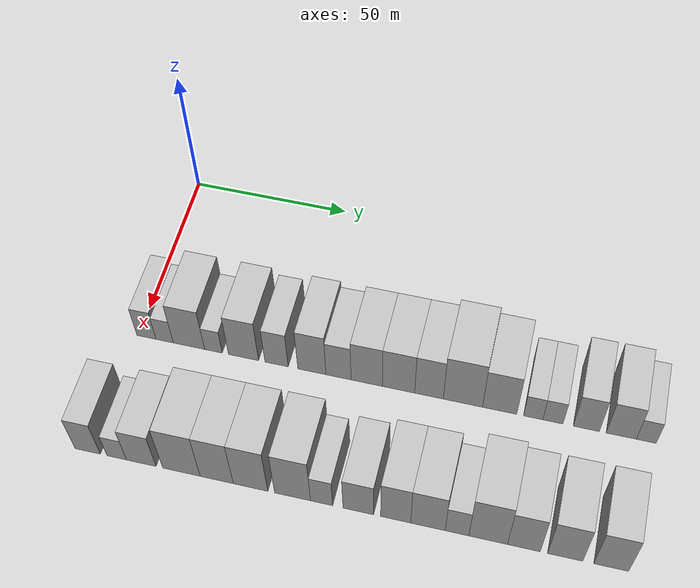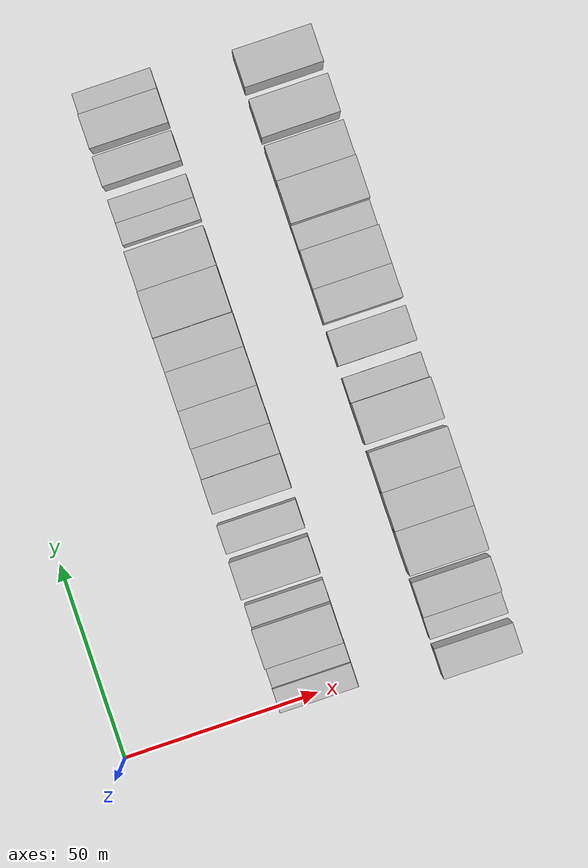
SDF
<sdf version="1.6">
 <world name="default">
  <model name="building_36">
   <static>1</static>
   <pose>50.0000 2.5396 0 0.000000 0.000000 0.000000</pose>
   <link name="link">
    <pose>0 0 7.50 0 0 0</pose>
    <collision name="collision"><geometry><box><size>20.0000 6.1050 15.0000</size></box></geometry></collision>
    <visual name="visual">
     <cast_shadows>0</cast_shadows>
     <geometry><box><size>20.0000 6.1050 15.0000</size></box></geometry>
     <material>
      <script>
       <uri>model://HANNAS_wall/materials/scripts</uri>
       <uri>model://HANNAS_wall/materials/textures</uri>
       <name>vrc/HANNAS_wall</name>
      </script>
     </material>
    </visual>
   </link>
  </model>
  <model name="building_37">
   <static>1</static>
   <pose>50.0000 8.3543 0 0.000000 0.000000 0.000000</pose>
   <link name="link">
    <pose>0 0 6.00 0 0 0</pose>
    <collision name="collision"><geometry><box><size>20.0000 5.5245 12.0000</size></box></geometry></collision>
    <visual name="visual">
     <cast_shadows>0</cast_shadows>
     <geometry><box><size>20.0000 5.5245 12.0000</size></box></geometry>
     <material>
      <script>
       <uri>model://HANNAS_wall/materials/scripts</uri>
       <uri>model://HANNAS_wall/materials/textures</uri>
       <name>vrc/HANNAS_wall</name>
      </script>
     </material>
    </visual>
   </link>
  </model>
  <model name="building_38">
   <static>1</static>
   <pose>50.0000 16.1037 0 0.000000 0.000000 0.000000</pose>
   <link name="link">
    <pose>0 0 10.50 0 0 0</pose>
    <collision name="collision"><geometry><box><size>20.0000 9.9742 21.0000</size></box></geometry></collision>
    <visual name="visual">
     <cast_shadows>0</cast_shadows>
     <geometry><box><size>20.0000 9.9742 21.0000</size></box></geometry>
     <material>
      <script>
       <uri>model://HANNAS_wall/materials/scripts</uri>
       <uri>model://HANNAS_wall/materials/textures</uri>
       <name>vrc/HANNAS_wall</name>
      </script>
     </material>
    </visual>
   </link>
  </model>
  <model name="building_39">
   <static>1</static>
   <pose>50.0000 23.8589 0 0.000000 0.000000 0.000000</pose>
   <link name="link">
    <pose>0 0 6.00 0 0 0</pose>
    <collision name="collision"><geometry><box><size>20.0000 5.5364 12.0000</size></box></geometry></collision>
    <visual name="visual">
     <cast_shadows>0</cast_shadows>
     <geometry><box><size>20.0000 5.5364 12.0000</size></box></geometry>
     <material>
      <script>
       <uri>model://HANNAS_wall/materials/scripts</uri>
       <uri>model://HANNAS_wall/materials/textures</uri>
       <name>vrc/HANNAS_wall</name>
      </script>
     </material>
    </visual>
   </link>
  </model>
  <model name="building_40">
   <static>1</static>
   <pose>50.0000 33.3413 0 0.000000 0.000000 0.000000</pose>
   <link name="link">
    <pose>0 0 10.50 0 0 0</pose>
    <collision name="collision"><geometry><box><size>20.0000 9.4282 21.0000</size></box></geometry></collision>
    <visual name="visual">
     <cast_shadows>0</cast_shadows>
     <geometry><box><size>20.0000 9.4282 21.0000</size></box></geometry>
     <material>
      <script>
       <uri>model://HANNAS_wall/materials/scripts</uri>
       <uri>model://HANNAS_wall/materials/textures</uri>
       <name>vrc/HANNAS_wall</name>
      </script>
     </material>
    </visual>
   </link>
  </model>
  <model name="building_41">
   <static>1</static>
   <pose>50.0000 43.6738 0 0.000000 0.000000 0.000000</pose>
   <link name="link">
    <pose>0 0 9.00 0 0 0</pose>
    <collision name="collision"><geometry><box><size>20.0000 7.2368 18.0000</size></box></geometry></collision>
    <visual name="visual">
     <cast_shadows>0</cast_shadows>
     <geometry><box><size>20.0000 7.2368 18.0000</size></box></geometry>
     <material>
      <script>
       <uri>model://HANNAS_wall/materials/scripts</uri>
       <uri>model://HANNAS_wall/materials/textures</uri>
       <name>vrc/HANNAS_wall</name>
      </script>
     </material>
    </visual>
   </link>
  </model>
  <model name="building_42">
   <static>1</static>
   <pose>50.0000 54.6382 0 0.000000 0.000000 0.000000</pose>
   <link name="link">
    <pose>0 0 10.50 0 0 0</pose>
    <collision name="collision"><geometry><box><size>20.0000 8.6921 21.0000</size></box></geometry></collision>
    <visual name="visual">
     <cast_shadows>0</cast_shadows>
     <geometry><box><size>20.0000 8.6921 21.0000</size></box></geometry>
     <material>
      <script>
       <uri>model://HANNAS_wall/materials/scripts</uri>
       <uri>model://HANNAS_wall/materials/textures</uri>
       <name>vrc/HANNAS_wall</name>
      </script>
     </material>
    </visual>
   </link>
  </model>
  <model name="building_43">
   <static>1</static>
   <pose>50.0000 62.8460 0 0.000000 0.000000 0.000000</pose>
   <link name="link">
    <pose>0 0 9.00 0 0 0</pose>
    <collision name="collision"><geometry><box><size>20.0000 7.7234 18.0000</size></box></geometry></collision>
    <visual name="visual">
     <cast_shadows>0</cast_shadows>
     <geometry><box><size>20.0000 7.7234 18.0000</size></box></geometry>
     <material>
      <script>
       <uri>model://HANNAS_wall/materials/scripts</uri>
       <uri>model://HANNAS_wall/materials/textures</uri>
       <name>vrc/HANNAS_wall</name>
      </script>
     </material>
    </visual>
   </link>
  </model>
  <model name="building_44">
   <static>1</static>
   <pose>50.0000 71.4762 0 0.000000 0.000000 0.000000</pose>
   <link name="link">
    <pose>0 0 10.50 0 0 0</pose>
    <collision name="collision"><geometry><box><size>20.0000 9.5371 21.0000</size></box></geometry></collision>
    <visual name="visual">
     <cast_shadows>0</cast_shadows>
     <geometry><box><size>20.0000 9.5371 21.0000</size></box></geometry>
     <material>
      <script>
       <uri>model://HANNAS_wall/materials/scripts</uri>
       <uri>model://HANNAS_wall/materials/textures</uri>
       <name>vrc/HANNAS_wall</name>
      </script>
     </material>
    </visual>
   </link>
  </model>
  <model name="building_45">
   <static>1</static>
   <pose>50.0000 81.1672 0 0.000000 0.000000 0.000000</pose>
   <link name="link">
    <pose>0 0 10.50 0 0 0</pose>
    <collision name="collision"><geometry><box><size>20.0000 9.8448 21.0000</size></box></geometry></collision>
    <visual name="visual">
     <cast_shadows>0</cast_shadows>
     <geometry><box><size>20.0000 9.8448 21.0000</size></box></geometry>
     <material>
      <script>
       <uri>model://HANNAS_wall/materials/scripts</uri>
       <uri>model://HANNAS_wall/materials/textures</uri>
       <name>vrc/HANNAS_wall</name>
      </script>
     </material>
    </visual>
   </link>
  </model>
  <model name="building_46">
   <static>1</static>
   <pose>50.0000 90.3996 0 0.000000 0.000000 0.000000</pose>
   <link name="link">
    <pose>0 0 10.50 0 0 0</pose>
    <collision name="collision"><geometry><box><size>20.0000 8.6202 21.0000</size></box></geometry></collision>
    <visual name="visual">
     <cast_shadows>0</cast_shadows>
     <geometry><box><size>20.0000 8.6202 21.0000</size></box></geometry>
     <material>
      <script>
       <uri>model://HANNAS_wall/materials/scripts</uri>
       <uri>model://HANNAS_wall/materials/textures</uri>
       <name>vrc/HANNAS_wall</name>
      </script>
     </material>
    </visual>
   </link>
  </model>
  <model name="building_47">
   <static>1</static>
   <pose>50.0000 100.5778 0 0.000000 0.000000 0.000000</pose>
   <link name="link">
    <pose>0 0 12.00 0 0 0</pose>
    <collision name="collision"><geometry><box><size>20.0000 11.7363 24.0000</size></box></geometry></collision>
    <visual name="visual">
     <cast_shadows>0</cast_shadows>
     <geometry><box><size>20.0000 11.7363 24.0000</size></box></geometry>
     <material>
      <script>
       <uri>model://HANNAS_wall/materials/scripts</uri>
       <uri>model://HANNAS_wall/materials/textures</uri>
       <name>vrc/HANNAS_wall</name>
      </script>
     </material>
    </visual>
   </link>
  </model>
  <model name="building_48">
   <static>1</static>
   <pose>50.0000 111.5434 0 0.000000 0.000000 0.000000</pose>
   <link name="link">
    <pose>0 0 10.50 0 0 0</pose>
    <collision name="collision"><geometry><box><size>20.0000 10.1949 21.0000</size></box></geometry></collision>
    <visual name="visual">
     <cast_shadows>0</cast_shadows>
     <geometry><box><size>20.0000 10.1949 21.0000</size></box></geometry>
     <material>
      <script>
       <uri>model://HANNAS_wall/materials/scripts</uri>
       <uri>model://HANNAS_wall/materials/textures</uri>
       <name>vrc/HANNAS_wall</name>
      </script>
     </material>
    </visual>
   </link>
  </model>
  <model name="building_49">
   <static>1</static>
   <pose>50.0000 121.4799 0 0.000000 0.000000 0.000000</pose>
   <link name="link">
    <pose>0 0 6.00 0 0 0</pose>
    <collision name="collision"><geometry><box><size>20.0000 5.6781 12.0000</size></box></geometry></collision>
    <visual name="visual">
     <cast_shadows>0</cast_shadows>
     <geometry><box><size>20.0000 5.6781 12.0000</size></box></geometry>
     <material>
      <script>
       <uri>model://HANNAS_wall/materials/scripts</uri>
       <uri>model://HANNAS_wall/materials/textures</uri>
       <name>vrc/HANNAS_wall</name>
      </script>
     </material>
    </visual>
   </link>
  </model>
  <model name="building_50">
   <static>1</static>
   <pose>50.0000 127.2958 0 0.000000 0.000000 0.000000</pose>
   <link name="link">
    <pose>0 0 6.00 0 0 0</pose>
    <collision name="collision"><geometry><box><size>20.0000 5.9538 12.0000</size></box></geometry></collision>
    <visual name="visual">
     <cast_shadows>0</cast_shadows>
     <geometry><box><size>20.0000 5.9538 12.0000</size></box></geometry>
     <material>
      <script>
       <uri>model://HANNAS_wall/materials/scripts</uri>
       <uri>model://HANNAS_wall/materials/textures</uri>
       <name>vrc/HANNAS_wall</name>
      </script>
     </material>
    </visual>
   </link>
  </model>
  <model name="building_51">
   <static>1</static>
   <pose>50.0000 137.0834 0 0.000000 0.000000 0.000000</pose>
   <link name="link">
    <pose>0 0 9.00 0 0 0</pose>
    <collision name="collision"><geometry><box><size>20.0000 7.6214 18.0000</size></box></geometry></collision>
    <visual name="visual">
     <cast_shadows>0</cast_shadows>
     <geometry><box><size>20.0000 7.6214 18.0000</size></box></geometry>
     <material>
      <script>
       <uri>model://HANNAS_wall/materials/scripts</uri>
       <uri>model://HANNAS_wall/materials/textures</uri>
       <name>vrc/HANNAS_wall</name>
      </script>
     </material>
    </visual>
   </link>
  </model>
  <model name="building_52">
   <static>1</static>
   <pose>50.0000 147.2627 0 0.000000 0.000000 0.000000</pose>
   <link name="link">
    <pose>0 0 9.00 0 0 0</pose>
    <collision name="collision"><geometry><box><size>20.0000 8.7371 18.0000</size></box></geometry></collision>
    <visual name="visual">
     <cast_shadows>0</cast_shadows>
     <geometry><box><size>20.0000 8.7371 18.0000</size></box></geometry>
     <material>
      <script>
       <uri>model://HANNAS_wall/materials/scripts</uri>
       <uri>model://HANNAS_wall/materials/textures</uri>
       <name>vrc/HANNAS_wall</name>
      </script>
     </material>
    </visual>
   </link>
  </model>
  <model name="building_53">
   <static>1</static>
   <pose>50.0000 154.4968 0 0.000000 0.000000 0.000000</pose>
   <link name="link">
    <pose>0 0 6.00 0 0 0</pose>
    <collision name="collision"><geometry><box><size>20.0000 5.7311 12.0000</size></box></geometry></collision>
    <visual name="visual">
     <cast_shadows>0</cast_shadows>
     <geometry><box><size>20.0000 5.7311 12.0000</size></box></geometry>
     <material>
      <script>
       <uri>model://HANNAS_wall/materials/scripts</uri>
       <uri>model://HANNAS_wall/materials/textures</uri>
       <name>vrc/HANNAS_wall</name>
      </script>
     </material>
    </visual>
   </link>
  </model>
  <model name="building_104">
   <static>1</static>
   <pose>90.0000 -1.3233 0 0.000000 0.000000 0.000000</pose>
   <link name="link">
    <pose>0 0 9.00 0 0 0</pose>
    <collision name="collision"><geometry><box><size>20.0000 7.6734 18.0000</size></box></geometry></collision>
    <visual name="visual">
     <cast_shadows>0</cast_shadows>
     <geometry><box><size>20.0000 7.6734 18.0000</size></box></geometry>
     <material>
      <script>
       <uri>model://HANNAS_wall/materials/scripts</uri>
       <uri>model://HANNAS_wall/materials/textures</uri>
       <name>vrc/HANNAS_wall</name>
      </script>
     </material>
    </visual>
   </link>
  </model>
  <model name="building_105">
   <static>1</static>
   <pose>90.0000 7.4750 0 0.000000 0.000000 0.000000</pose>
   <link name="link">
    <pose>0 0 6.00 0 0 0</pose>
    <collision name="collision"><geometry><box><size>20.0000 5.9233 12.0000</size></box></geometry></collision>
    <visual name="visual">
     <cast_shadows>0</cast_shadows>
     <geometry><box><size>20.0000 5.9233 12.0000</size></box></geometry>
     <material>
      <script>
       <uri>model://HANNAS_wall/materials/scripts</uri>
       <uri>model://HANNAS_wall/materials/textures</uri>
       <name>vrc/HANNAS_wall</name>
      </script>
     </material>
    </visual>
   </link>
  </model>
  <model name="building_106">
   <static>1</static>
   <pose>90.0000 14.8779 0 0.000000 0.000000 0.000000</pose>
   <link name="link">
    <pose>0 0 9.00 0 0 0</pose>
    <collision name="collision"><geometry><box><size>20.0000 8.8825 18.0000</size></box></geometry></collision>
    <visual name="visual">
     <cast_shadows>0</cast_shadows>
     <geometry><box><size>20.0000 8.8825 18.0000</size></box></geometry>
     <material>
      <script>
       <uri>model://HANNAS_wall/materials/scripts</uri>
       <uri>model://HANNAS_wall/materials/textures</uri>
       <name>vrc/HANNAS_wall</name>
      </script>
     </material>
    </visual>
   </link>
  </model>
  <model name="building_107">
   <static>1</static>
   <pose>90.0000 26.9058 0 0.000000 0.000000 0.000000</pose>
   <link name="link">
    <pose>0 0 12.00 0 0 0</pose>
    <collision name="collision"><geometry><box><size>20.0000 11.1733 24.0000</size></box></geometry></collision>
    <visual name="visual">
     <cast_shadows>0</cast_shadows>
     <geometry><box><size>20.0000 11.1733 24.0000</size></box></geometry>
     <material>
      <script>
       <uri>model://HANNAS_wall/materials/scripts</uri>
       <uri>model://HANNAS_wall/materials/textures</uri>
       <name>vrc/HANNAS_wall</name>
      </script>
     </material>
    </visual>
   </link>
  </model>
  <model name="building_108">
   <static>1</static>
   <pose>90.0000 37.3984 0 0.000000 0.000000 0.000000</pose>
   <link name="link">
    <pose>0 0 12.00 0 0 0</pose>
    <collision name="collision"><geometry><box><size>20.0000 9.8119 24.0000</size></box></geometry></collision>
    <visual name="visual">
     <cast_shadows>0</cast_shadows>
     <geometry><box><size>20.0000 9.8119 24.0000</size></box></geometry>
     <material>
      <script>
       <uri>model://HANNAS_wall/materials/scripts</uri>
       <uri>model://HANNAS_wall/materials/textures</uri>
       <name>vrc/HANNAS_wall</name>
      </script>
     </material>
    </visual>
   </link>
  </model>
  <model name="building_109">
   <static>1</static>
   <pose>90.0000 47.3641 0 0.000000 0.000000 0.000000</pose>
   <link name="link">
    <pose>0 0 12.00 0 0 0</pose>
    <collision name="collision"><geometry><box><size>20.0000 10.1194 24.0000</size></box></geometry></collision>
    <visual name="visual">
     <cast_shadows>0</cast_shadows>
     <geometry><box><size>20.0000 10.1194 24.0000</size></box></geometry>
     <material>
      <script>
       <uri>model://HANNAS_wall/materials/scripts</uri>
       <uri>model://HANNAS_wall/materials/textures</uri>
       <name>vrc/HANNAS_wall</name>
      </script>
     </material>
    </visual>
   </link>
  </model>
  <model name="building_110">
   <static>1</static>
   <pose>90.0000 59.6481 0 0.000000 0.000000 0.000000</pose>
   <link name="link">
    <pose>0 0 12.00 0 0 0</pose>
    <collision name="collision"><geometry><box><size>20.0000 10.4486 24.0000</size></box></geometry></collision>
    <visual name="visual">
     <cast_shadows>0</cast_shadows>
     <geometry><box><size>20.0000 10.4486 24.0000</size></box></geometry>
     <material>
      <script>
       <uri>model://HANNAS_wall/materials/scripts</uri>
       <uri>model://HANNAS_wall/materials/textures</uri>
       <name>vrc/HANNAS_wall</name>
      </script>
     </material>
    </visual>
   </link>
  </model>
  <model name="building_111">
   <static>1</static>
   <pose>90.0000 68.0608 0 0.000000 0.000000 0.000000</pose>
   <link name="link">
    <pose>0 0 7.50 0 0 0</pose>
    <collision name="collision"><geometry><box><size>20.0000 6.3768 15.0000</size></box></geometry></collision>
    <visual name="visual">
     <cast_shadows>0</cast_shadows>
     <geometry><box><size>20.0000 6.3768 15.0000</size></box></geometry>
     <material>
      <script>
       <uri>model://HANNAS_wall/materials/scripts</uri>
       <uri>model://HANNAS_wall/materials/textures</uri>
       <name>vrc/HANNAS_wall</name>
      </script>
     </material>
    </visual>
   </link>
  </model>
  <model name="building_112">
   <static>1</static>
   <pose>90.0000 78.6426 0 0.000000 0.000000 0.000000</pose>
   <link name="link">
    <pose>0 0 9.00 0 0 0</pose>
    <collision name="collision"><geometry><box><size>20.0000 8.7869 18.0000</size></box></geometry></collision>
    <visual name="visual">
     <cast_shadows>0</cast_shadows>
     <geometry><box><size>20.0000 8.7869 18.0000</size></box></geometry>
     <material>
      <script>
       <uri>model://HANNAS_wall/materials/scripts</uri>
       <uri>model://HANNAS_wall/materials/textures</uri>
       <name>vrc/HANNAS_wall</name>
      </script>
     </material>
    </visual>
   </link>
  </model>
  <model name="building_113">
   <static>1</static>
   <pose>90.0000 89.3185 0 0.000000 0.000000 0.000000</pose>
   <link name="link">
    <pose>0 0 10.50 0 0 0</pose>
    <collision name="collision"><geometry><box><size>20.0000 8.5649 21.0000</size></box></geometry></collision>
    <visual name="visual">
     <cast_shadows>0</cast_shadows>
     <geometry><box><size>20.0000 8.5649 21.0000</size></box></geometry>
     <material>
      <script>
       <uri>model://HANNAS_wall/materials/scripts</uri>
       <uri>model://HANNAS_wall/materials/textures</uri>
       <name>vrc/HANNAS_wall</name>
      </script>
     </material>
    </visual>
   </link>
  </model>
  <model name="building_114">
   <static>1</static>
   <pose>90.0000 98.4926 0 0.000000 0.000000 0.000000</pose>
   <link name="link">
    <pose>0 0 10.50 0 0 0</pose>
    <collision name="collision"><geometry><box><size>20.0000 9.7833 21.0000</size></box></geometry></collision>
    <visual name="visual">
     <cast_shadows>0</cast_shadows>
     <geometry><box><size>20.0000 9.7833 21.0000</size></box></geometry>
     <material>
      <script>
       <uri>model://HANNAS_wall/materials/scripts</uri>
       <uri>model://HANNAS_wall/materials/textures</uri>
       <name>vrc/HANNAS_wall</name>
      </script>
     </material>
    </visual>
   </link>
  </model>
  <model name="building_115">
   <static>1</static>
   <pose>90.0000 106.6974 0 0.000000 0.000000 0.000000</pose>
   <link name="link">
    <pose>0 0 7.50 0 0 0</pose>
    <collision name="collision"><geometry><box><size>20.0000 6.6263 15.0000</size></box></geometry></collision>
    <visual name="visual">
     <cast_shadows>0</cast_shadows>
     <geometry><box><size>20.0000 6.6263 15.0000</size></box></geometry>
     <material>
      <script>
       <uri>model://HANNAS_wall/materials/scripts</uri>
       <uri>model://HANNAS_wall/materials/textures</uri>
       <name>vrc/HANNAS_wall</name>
      </script>
     </material>
    </visual>
   </link>
  </model>
  <model name="building_116">
   <static>1</static>
   <pose>90.0000 115.4018 0 0.000000 0.000000 0.000000</pose>
   <link name="link">
    <pose>0 0 12.00 0 0 0</pose>
    <collision name="collision"><geometry><box><size>20.0000 10.7824 24.0000</size></box></geometry></collision>
    <visual name="visual">
     <cast_shadows>0</cast_shadows>
     <geometry><box><size>20.0000 10.7824 24.0000</size></box></geometry>
     <material>
      <script>
       <uri>model://HANNAS_wall/materials/scripts</uri>
       <uri>model://HANNAS_wall/materials/textures</uri>
       <name>vrc/HANNAS_wall</name>
      </script>
     </material>
    </visual>
   </link>
  </model>
  <model name="building_117">
   <static>1</static>
   <pose>90.0000 125.3469 0 0.000000 0.000000 0.000000</pose>
   <link name="link">
    <pose>0 0 10.50 0 0 0</pose>
    <collision name="collision"><geometry><box><size>20.0000 9.1078 21.0000</size></box></geometry></collision>
    <visual name="visual">
     <cast_shadows>0</cast_shadows>
     <geometry><box><size>20.0000 9.1078 21.0000</size></box></geometry>
     <material>
      <script>
       <uri>model://HANNAS_wall/materials/scripts</uri>
       <uri>model://HANNAS_wall/materials/textures</uri>
       <name>vrc/HANNAS_wall</name>
      </script>
     </material>
    </visual>
   </link>
  </model>
  <model name="building_118">
   <static>1</static>
   <pose>90.0000 136.7543 0 0.000000 0.000000 0.000000</pose>
   <link name="link">
    <pose>0 0 10.50 0 0 0</pose>
    <collision name="collision"><geometry><box><size>20.0000 9.7069 21.0000</size></box></geometry></collision>
    <visual name="visual">
     <cast_shadows>0</cast_shadows>
     <geometry><box><size>20.0000 9.7069 21.0000</size></box></geometry>
     <material>
      <script>
       <uri>model://HANNAS_wall/materials/scripts</uri>
       <uri>model://HANNAS_wall/materials/textures</uri>
       <name>vrc/HANNAS_wall</name>
      </script>
     </material>
    </visual>
   </link>
  </model>
  <model name="building_119">
   <static>1</static>
   <pose>90.0000 149.3537 0 0.000000 0.000000 0.000000</pose>
   <link name="link">
    <pose>0 0 10.50 0 0 0</pose>
    <collision name="collision"><geometry><box><size>20.0000 9.4919 21.0000</size></box></geometry></collision>
    <visual name="visual">
     <cast_shadows>0</cast_shadows>
     <geometry><box><size>20.0000 9.4919 21.0000</size></box></geometry>
     <material>
      <script>
       <uri>model://HANNAS_wall/materials/scripts</uri>
       <uri>model://HANNAS_wall/materials/textures</uri>
       <name>vrc/HANNAS_wall</name>
      </script>
     </material>
    </visual>
   </link>
  </model>
 </world>
</sdf>
